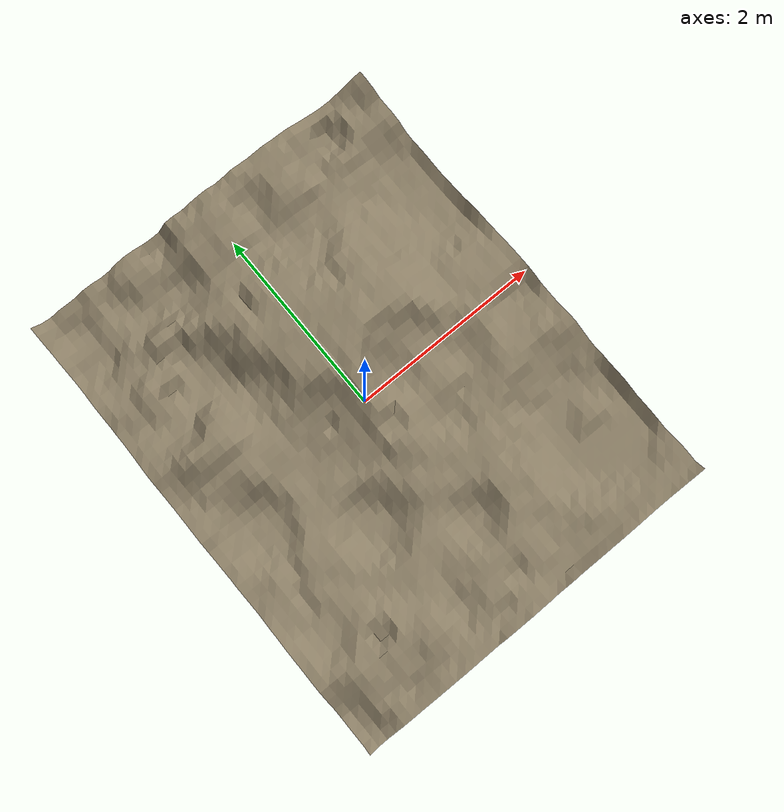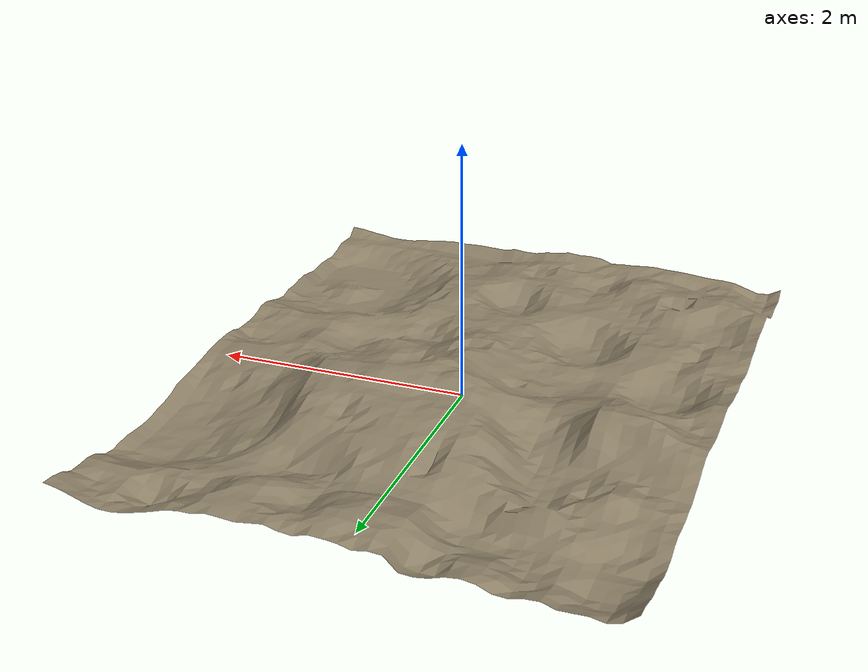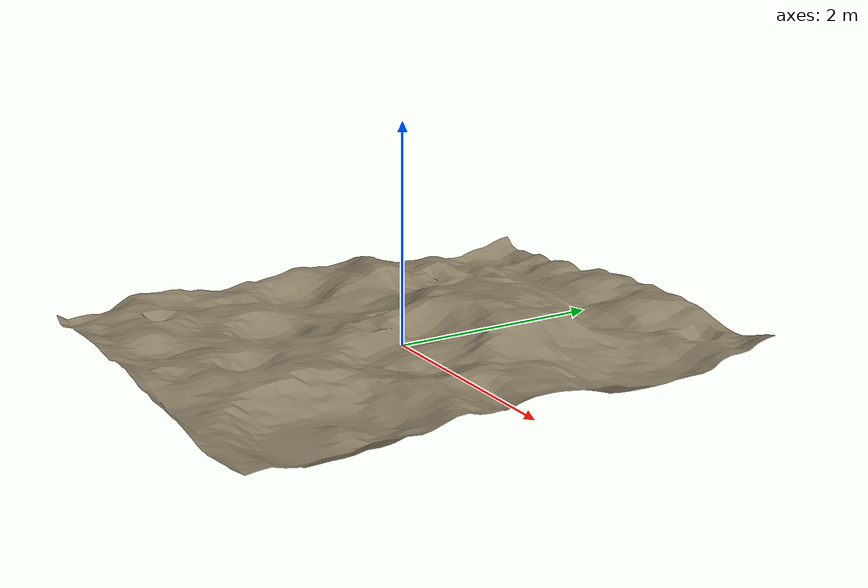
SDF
<?xml version="1.0"?>
<sdf version="1.9">
  <model name="arena_terrain_v04">
    <static>true</static>
    <!-- Mesh is already in metres, Z-up and centred at the origin, so no
         scale or rotation is required (unlike the STEP-derived slope). -->
    <pose>0 0 0 0 0 0</pose>
    <link name="terrain">
      <collision name="collision">
        <geometry>
          <mesh>
            <uri>model://arena_terrain_v04/meshes/arena_collision.stl</uri>
            <scale>1 1 1</scale>
          </mesh>
        </geometry>
        <surface>
          <friction>
            <ode><mu>0.9</mu><mu2>0.7</mu2></ode>
          </friction>
          <contact><ode><kp>1000000</kp><kd>100</kd></ode></contact>
        </surface>
      </collision>
      <visual name="visual">
        <geometry>
          <mesh>
            <uri>model://arena_terrain_v04/meshes/arena_visual.stl</uri>
            <scale>1 1 1</scale>
          </mesh>
        </geometry>
        <material>
          <diffuse>0.55 0.50 0.40 1</diffuse>
          <specular>0.1 0.1 0.1 1</specular>
        </material>
      </visual>
    </link>
  </model>
</sdf>
